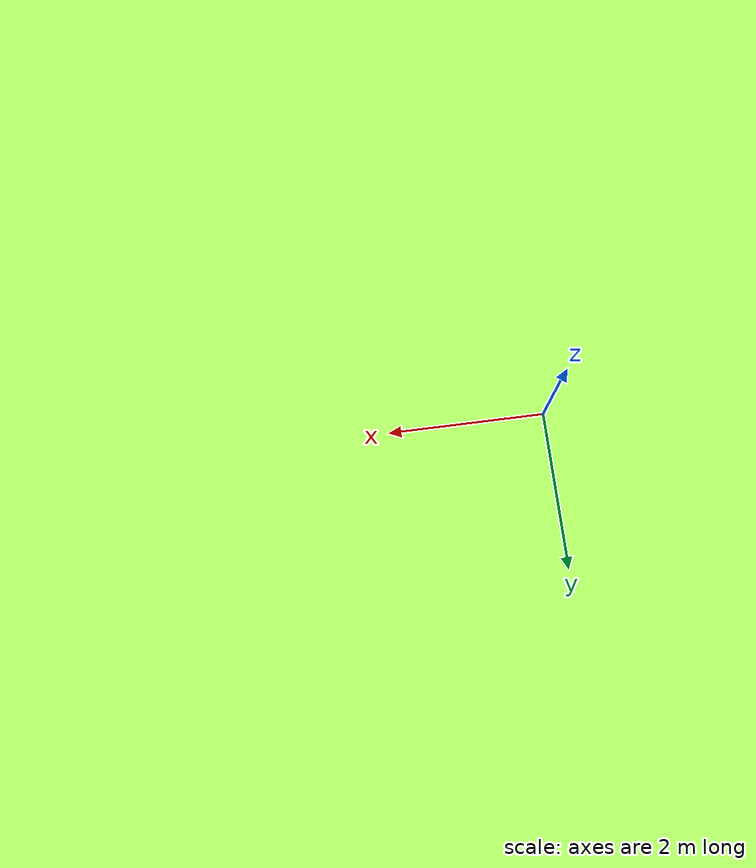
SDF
<sdf version="1.6">
 <world name="default">
  <atmosphere type="adiabatic"/>
  <wind><linear_velocity>0 0 0</linear_velocity></wind>
  <gravity>0 0 -9.8</gravity>
  <model name="static_cylinder">
   <pose>-1.02674 1.13477 0.20368 0 -0 0.980046</pose>
   <static>1</static>
   <allow_auto_disable>0</allow_auto_disable>
   <link name="link">
    <collision name="collision">
     <geometry>
      <cylinder><radius>0.9579549503761582</radius><length>0.4073608443961949</length></cylinder>
     </geometry>
     <max_contacts>20</max_contacts>
    </collision>
    <visual name="visual">
     <geometry>
      <cylinder><radius>0.9579549503761582</radius><length>0.4073608443961949</length></cylinder>
     </geometry>
     <material>
      <ambient>0.364706 0.0235294 0.913725 1</ambient>
      <diffuse>0.36470588235294116 0.023529411764705882 0.9137254901960784 1</diffuse>
     </material>
     <transparency>0.0</transparency>
    </visual>
   </link>
  </model>
  <model name="static_cylinder_1">
   <pose>0.656442 -3.1689 0.70253 0 0 -1.30443</pose>
   <static>1</static>
   <allow_auto_disable>0</allow_auto_disable>
   <link name="link">
    <collision name="collision">
     <geometry>
      <cylinder><radius>1.2951704222176184</radius><length>1.4050596820585923</length></cylinder>
     </geometry>
     <max_contacts>20</max_contacts>
    </collision>
    <visual name="visual">
     <geometry>
      <cylinder><radius>1.2951704222176184</radius><length>1.4050596820585923</length></cylinder>
     </geometry>
     <material>
      <ambient>0.792157 0.00392157 0.278431 1</ambient>
      <diffuse>0.792156862745098 0.00392156862745098 0.2784313725490196 1</diffuse>
     </material>
     <transparency>0.0</transparency>
    </visual>
   </link>
  </model>
  <model name="dyn_box">
   <pose>3.84263 1.70594 0.795856 0 -0 0.0231037</pose>
   <static>0</static>
   <allow_auto_disable>0</allow_auto_disable>
   <link name="link">
    <collision name="collision">
     <geometry><box><size>4.08764 4.89506 1.59171</size></box></geometry>
     <max_contacts>20</max_contacts>
    </collision>
    <visual name="visual">
     <geometry><box><size>4.08764 4.89506 1.59171</size></box></geometry>
     <material>
      <ambient>0.0823529 0.180392 1 1</ambient>
      <diffuse>0.08235294117647059 0.1803921568627451 1.0 1</diffuse>
     </material>
     <transparency>0.0</transparency>
    </visual>
    <inertial>
     <inertia>
      <ixx>1.0931811376675873</ixx>
      <iyy>0.7939321137034249</iyy>
      <izz>1.6780469528233848</izz>
      <ixy>0.0</ixy>
      <ixz>0.0</ixz>
      <iyz>0.0</iyz>
     </inertia>
     <mass>0.4951153810765976</mass>
    </inertial>
   </link>
  </model>
  <model name="dyn_box_1">
   <pose>-0.74526 -0.614456 1.37239 0 -0 2.69498</pose>
   <static>0</static>
   <allow_auto_disable>0</allow_auto_disable>
   <link name="link">
    <collision name="collision">
     <geometry><box><size>0.633078 0.664071 2.74478</size></box></geometry>
     <max_contacts>20</max_contacts>
    </collision>
    <visual name="visual">
     <geometry><box><size>0.633078 0.664071 2.74478</size></box></geometry>
     <material>
      <ambient>0.560784 0.682353 0.133333 1</ambient>
      <diffuse>0.5607843137254902 0.6823529411764706 0.13333333333333333 1</diffuse>
     </material>
     <transparency>0.0</transparency>
    </visual>
    <inertial>
     <inertia>
      <ixx>0.06645682090577613</ixx>
      <iyy>0.06612180953759149</iyy>
      <izz>0.0070148162472991405</izz>
      <ixy>0.0</ixy>
      <ixz>0.0</ixz>
      <iyz>0.0</iyz>
     </inertia>
     <mass>0.1</mass>
    </inertial>
   </link>
  </model>
  <include>
   <uri>model://ceiling_7</uri>
   <pose>0 0 3 0 -0 0</pose>
   <name>ceiling_7</name>
   <static>1</static>
  </include>
  <include><uri>model://ground_plane</uri><name>ground_plane</name><static>1</static></include>
  <include><uri>model://sun</uri></include>
  <physics name="default_physics" default="0" type="ode">
   <gravity>0 0 -9.8066</gravity>
   <ode>
    <solver>
     <type>quick</type>
     <iters>10</iters>
     <sor>1.3</sor>
     <use_dynamic_moi_rescaling>0</use_dynamic_moi_rescaling>
    </solver>
    <constraints>
     <cfm>0</cfm>
     <erp>0.2</erp>
     <contact_max_correcting_vel>100</contact_max_correcting_vel>
     <contact_surface_layer>0.001</contact_surface_layer>
    </constraints>
   </ode>
   <max_step_size>0.004</max_step_size>
   <real_time_factor>1</real_time_factor>
   <real_time_update_rate>250</real_time_update_rate>
   <magnetic_field>6.0e-6 2.3e-5 -4.2e-5</magnetic_field>
  </physics>
  <scene>
   <ambient>0.8 0.8 0.8 1</ambient>
   <background>0.8 0.9 1 1</background>
   <shadows>false</shadows>
   <grid>false</grid>
   <origin_visual>false</origin_visual>
  </scene>
 </world>
</sdf>

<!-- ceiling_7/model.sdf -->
<sdf version="1.6">
  <model name="ceiling_7">
    <pose frame="">0 0 4 0 -0 0</pose>
    <static>1</static>
    <self_collide>0</self_collide>
    <allow_auto_disable>0</allow_auto_disable>
    <link name="mesh">
      <kinematic>0</kinematic>
      <gravity>1</gravity>
      <self_collide>0</self_collide>
      <collision name="collision">
        <geometry>
          <mesh>
            <uri>model://ceiling_7/meshes/rmLZEfQHzg.stl</uri>
            <scale>1 1 1</scale>
          </mesh>
        </geometry>
        <pose frame="">-5.75729 1.6713 -0.075 0 -0 0</pose>
        <max_contacts>20</max_contacts>
      </collision>
      <visual name="visual">
        <geometry>
          <mesh>
            <uri>model://ceiling_7/meshes/QUSjOwQmOW.stl</uri>
            <scale>1 1 1</scale>
          </mesh>
        </geometry>
        <material>
          <ambient>0.694118 1 0.396078 1</ambient>
          <diffuse>0.6941176470588235 1.0 0.396078431372549 1</diffuse>
        </material>
        <pose frame="">-5.75729 1.6713 -0.075 0 -0 0</pose>
        <cast_shadows>1</cast_shadows>
        <transparency>0.0</transparency>
      </visual>
      <pose frame="">0 0 0 0 -0 0</pose>
    </link>
  </model>
</sdf>
